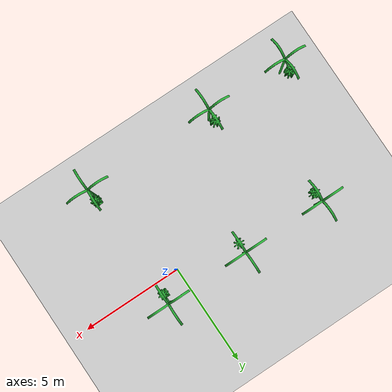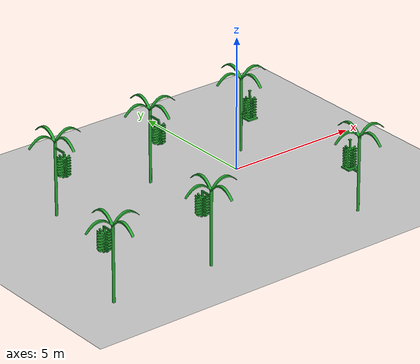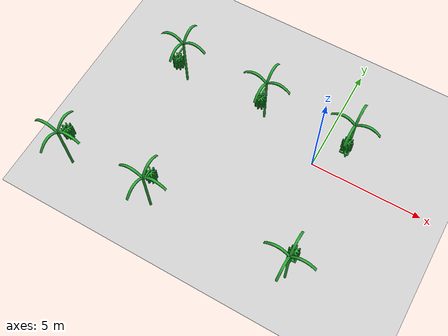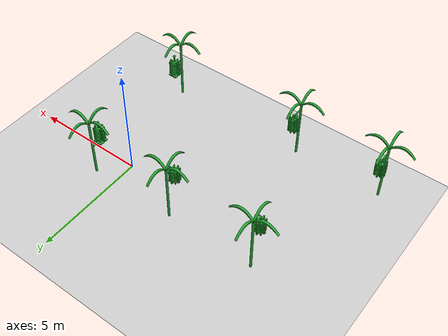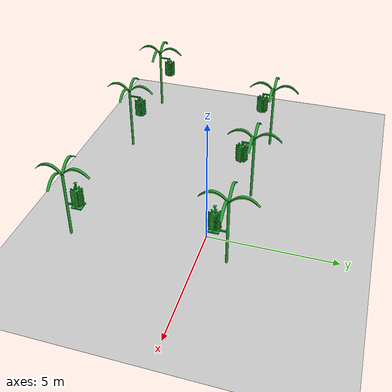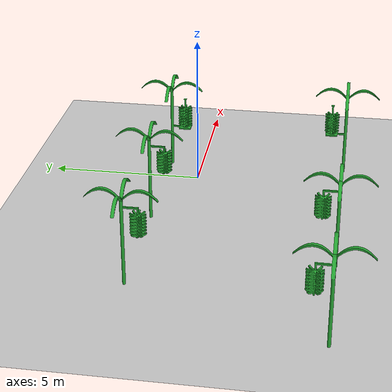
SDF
<sdf version="1.6">
 <world name="default">
  <light name="sun" type="directional">
   <pose>0 0 10 0 -0 0</pose>
   <diffuse>0.8 0.8 0.8 1</diffuse>
   <specular>0.2 0.2 0.2 1</specular>
   <attenuation>
    <range>1000</range>
    <constant>0.9</constant>
    <linear>0.01</linear>
    <quadratic>0.001</quadratic>
   </attenuation>
   <direction>-0.5 0.1 -0.9</direction>
  </light>
  <gravity>0 0 -9.8</gravity>
  <magnetic_field>6e-06 2.3e-05 -4.2e-05</magnetic_field>
  <atmosphere type="adiabatic"/>
  <physics name="default_physics" default="0" type="ode">
   <max_step_size>0.001</max_step_size>
   <real_time_factor>1</real_time_factor>
   <real_time_update_rate>1000</real_time_update_rate>
  </physics>
  <scene><ambient>0.4 0.4 0.4 1</ambient><background>0.7 0.7 0.7 1</background><shadows>1</shadows></scene>
  <spherical_coordinates>
   <surface_model>EARTH_WGS84</surface_model>
   <latitude_deg>0</latitude_deg>
   <longitude_deg>0</longitude_deg>
   <elevation>0</elevation>
   <heading_deg>0</heading_deg>
  </spherical_coordinates>
  <model name="banana_table">
   <static>1</static>
   <link name="link">
    <inertial>
     <inertia><ixx>0.0001</ixx><ixy>0</ixy><ixz>0</ixz><iyy>0.0001</iyy><iyz>0</iyz><izz>0.0001</izz></inertia>
     <mass>1</mass>
    </inertial>
    <collision name="collision">
     <geometry>
      <mesh><uri>model://banana_table/meshes/banana_table.STL</uri><scale>0.001 0.001 0.001</scale></mesh>
     </geometry>
     <surface><friction><ode><mu>1000</mu><mu2>500</mu2></ode></friction></surface>
    </collision>
    <visual name="visual">
     <cast_shadows>0</cast_shadows>
     <geometry>
      <mesh><uri>model://banana_table/meshes/banana_table.STL</uri><scale>0.001 0.001 0.001</scale></mesh>
     </geometry>
     <material>
      <script><uri>file://media/materials/scripts/gazebo.material</uri><name>Gazebo/Green</name></script>
     </material>
    </visual>
   </link>
   <pose>0 -0.5 0 0 -0 0</pose>
  </model>
  <model name="mud_plane">
   <static>1</static>
   <link name="link">
    <collision name="collision">
     <geometry><plane><normal>0 0 1</normal><size>10 10</size></plane></geometry>
     <surface><friction><ode><mu>100</mu><mu2>50</mu2></ode></friction></surface>
    </collision>
    <visual name="visual">
     <cast_shadows>0</cast_shadows>
     <geometry><plane><normal>0 0 1</normal><size>100 100</size></plane></geometry>
     <material>
      <script>
       <uri>model://mud_plane/materials/scripts</uri>
       <uri>model://mud_plane/materials/textures</uri>
       <name>mud_plane/Image</name>
      </script>
     </material>
    </visual>
   </link>
   <pose>2.02318 -4.44105 0 0 -0 0</pose>
  </model>
  <model name="banana">
   <static>0</static>
   <link name="link">
    <inertial>
     <pose>0.237265 0.237265 0.51 0 -0 0</pose>
     <inertia><ixx>0.0001</ixx><ixy>0</ixy><ixz>0</ixz><iyy>0.0001</iyy><iyz>0</iyz><izz>0.0001</izz></inertia>
     <mass>1</mass>
    </inertial>
    <collision name="collision">
     <geometry><mesh><uri>model://banana/meshes/banana.STL</uri><scale>0.001 0.001 0.001</scale></mesh></geometry>
     <surface><friction><ode><mu>1000</mu><mu2>500</mu2></ode></friction></surface>
    </collision>
    <visual name="visual">
     <cast_shadows>0</cast_shadows>
     <geometry><mesh><uri>model://banana/meshes/banana.STL</uri><scale>0.001 0.001 0.001</scale></mesh></geometry>
     <material>
      <script><uri>file://media/materials/scripts/gazebo.material</uri><name>Gazebo/Green</name></script>
     </material>
    </visual>
   </link>
   <pose>0.833245 0.358256 1.19721 6e-06 -7e-06 -4e-05</pose>
  </model>
  <model name="banana_table_0">
   <static>1</static>
   <link name="link">
    <inertial>
     <inertia><ixx>0.0001</ixx><ixy>0</ixy><ixz>0</ixz><iyy>0.0001</iyy><iyz>0</iyz><izz>0.0001</izz></inertia>
     <mass>1</mass>
    </inertial>
    <collision name="collision">
     <geometry>
      <mesh><uri>model://banana_table/meshes/banana_table.STL</uri><scale>0.001 0.001 0.001</scale></mesh>
     </geometry>
     <surface><friction><ode><mu>1000</mu><mu2>500</mu2></ode></friction></surface>
    </collision>
    <visual name="visual">
     <cast_shadows>0</cast_shadows>
     <geometry>
      <mesh><uri>model://banana_table/meshes/banana_table.STL</uri><scale>0.001 0.001 0.001</scale></mesh>
     </geometry>
     <material>
      <script><uri>file://media/materials/scripts/gazebo.material</uri><name>Gazebo/Green</name></script>
     </material>
    </visual>
   </link>
   <pose>2.34064 -3.40936 0 0 -0 3.1415</pose>
  </model>
  <model name="banana_0">
   <static>0</static>
   <link name="link">
    <inertial>
     <pose>0.237265 0.237265 0.51 0 -0 0</pose>
     <inertia><ixx>0.001</ixx><ixy>0</ixy><ixz>0</ixz><iyy>0.001</iyy><iyz>0</iyz><izz>0.001</izz></inertia>
     <mass>0.001</mass>
    </inertial>
    <collision name="collision">
     <geometry><mesh><uri>model://banana/meshes/banana.STL</uri><scale>0.001 0.001 0.001</scale></mesh></geometry>
     <surface><friction><ode><mu>50</mu><mu2>100</mu2></ode></friction></surface>
    </collision>
    <visual name="visual">
     <cast_shadows>0</cast_shadows>
     <geometry><mesh><uri>model://banana/meshes/banana.STL</uri><scale>0.001 0.001 0.001</scale></mesh></geometry>
     <material>
      <script><uri>file://media/materials/scripts/gazebo.material</uri><name>Gazebo/Green</name></script>
     </material>
    </visual>
   </link>
   <pose>1.03294 -4.74196 1.1972 -2e-06 -4e-06 5.4e-05</pose>
  </model>
  <model name="bananatree">
   <static>1</static>
   <link name="link">
    <inertial>
     <inertia><ixx>0.0001</ixx><ixy>0</ixy><ixz>0</ixz><iyy>0.0001</iyy><iyz>0</iyz><izz>0.0001</izz></inertia>
     <mass>1</mass>
    </inertial>
    <collision name="collision">
     <geometry>
      <mesh><uri>model://bananatree/meshes/bananatree.STL</uri><scale>0.001 0.001 0.001</scale></mesh>
     </geometry>
     <surface><friction><ode><mu>1000</mu><mu2>500</mu2></ode></friction></surface>
    </collision>
    <visual name="visual">
     <cast_shadows>0</cast_shadows>
     <geometry>
      <mesh><uri>model://bananatree/meshes/bananatree.STL</uri><scale>0.001 0.001 0.001</scale></mesh>
     </geometry>
     <material>
      <script><uri>file://media/materials/scripts/gazebo.material</uri><name>Gazebo/Green</name></script>
     </material>
    </visual>
   </link>
   <pose>-4 -0.5 0 0 -0 0</pose>
  </model>
  <model name="bananatree_0">
   <static>1</static>
   <link name="link">
    <inertial>
     <inertia><ixx>0.0001</ixx><ixy>0</ixy><ixz>0</ixz><iyy>0.0001</iyy><iyz>0</iyz><izz>0.0001</izz></inertia>
     <mass>1</mass>
    </inertial>
    <collision name="collision">
     <geometry>
      <mesh><uri>model://bananatree/meshes/bananatree.STL</uri><scale>0.001 0.001 0.001</scale></mesh>
     </geometry>
     <surface><friction><ode><mu>1000</mu><mu2>500</mu2></ode></friction></surface>
    </collision>
    <visual name="visual">
     <cast_shadows>0</cast_shadows>
     <geometry>
      <mesh><uri>model://bananatree/meshes/bananatree.STL</uri><scale>0.001 0.001 0.001</scale></mesh>
     </geometry>
     <material>
      <script><uri>file://media/materials/scripts/gazebo.material</uri><name>Gazebo/Green</name></script>
     </material>
    </visual>
   </link>
   <pose>-8 -0.5 0 0 -0 0</pose>
  </model>
  <model name="bananatree_1">
   <static>1</static>
   <link name="link">
    <inertial>
     <inertia><ixx>0.0001</ixx><ixy>0</ixy><ixz>0</ixz><iyy>0.0001</iyy><iyz>0</iyz><izz>0.0001</izz></inertia>
     <mass>1</mass>
    </inertial>
    <collision name="collision">
     <geometry>
      <mesh><uri>model://bananatree/meshes/bananatree.STL</uri><scale>0.001 0.001 0.001</scale></mesh>
     </geometry>
     <surface><friction><ode><mu>1000</mu><mu2>500</mu2></ode></friction></surface>
    </collision>
    <visual name="visual">
     <cast_shadows>0</cast_shadows>
     <geometry>
      <mesh><uri>model://bananatree/meshes/bananatree.STL</uri><scale>0.001 0.001 0.001</scale></mesh>
     </geometry>
     <material>
      <script><uri>file://media/materials/scripts/gazebo.material</uri><name>Gazebo/Green</name></script>
     </material>
    </visual>
   </link>
   <pose>-8 -3.40936 0 0 -0 3.1415</pose>
  </model>
  <model name="bananatree_2">
   <static>1</static>
   <link name="link">
    <inertial>
     <inertia><ixx>0.0001</ixx><ixy>0</ixy><ixz>0</ixz><iyy>0.0001</iyy><iyz>0</iyz><izz>0.0001</izz></inertia>
     <mass>1</mass>
    </inertial>
    <collision name="collision">
     <geometry>
      <mesh><uri>model://bananatree/meshes/bananatree.STL</uri><scale>0.001 0.001 0.001</scale></mesh>
     </geometry>
     <surface><friction><ode><mu>1000</mu><mu2>500</mu2></ode></friction></surface>
    </collision>
    <visual name="visual">
     <cast_shadows>0</cast_shadows>
     <geometry>
      <mesh><uri>model://bananatree/meshes/bananatree.STL</uri><scale>0.001 0.001 0.001</scale></mesh>
     </geometry>
     <material>
      <script><uri>file://media/materials/scripts/gazebo.material</uri><name>Gazebo/Green</name></script>
     </material>
    </visual>
   </link>
   <pose>-4 -3.40936 0 0 -0 3.1415</pose>
  </model>
 </world>
</sdf>
